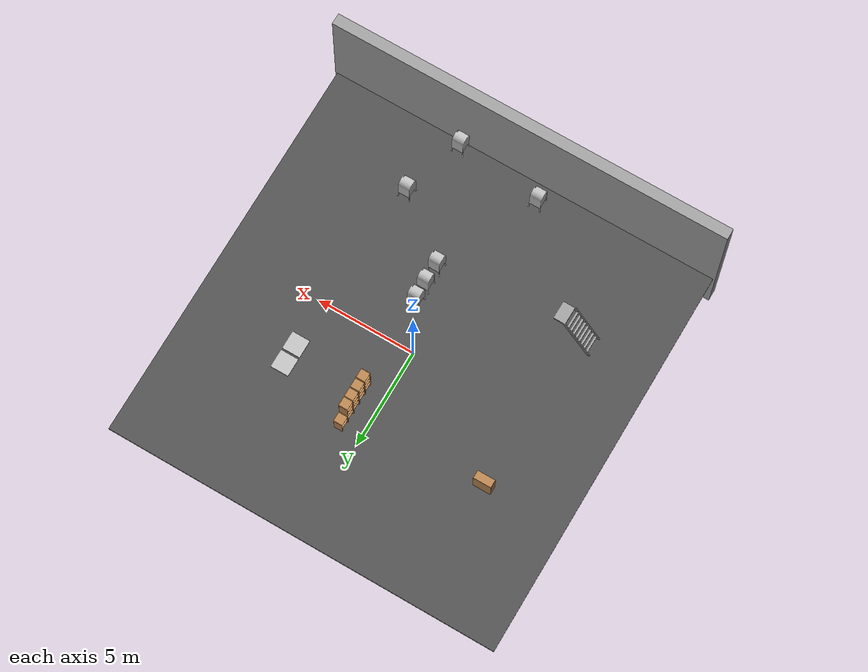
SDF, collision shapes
<sdf version="1.6">
 <model name="indoor_environment_4">
  <link name="link">
   <visual name="visual">
    <cast_shadows>0</cast_shadows>
    <geometry><box><size>20 20 0.1</size></box></geometry>
    <material>
     <script>
      <uri>model://asphalt_plane/materials/scripts</uri>
      <uri>model://asphalt_plane/materials/textures</uri>
      <name>vrc/asphalt</name>
     </script>
     <ambient>0.5 0.5 0.5 1</ambient>
     <diffuse>0.5 0.5 0.5 1</diffuse>
     <specular>0.2 0.2 0.2 1</specular>
     <emissive>0 0 0 1</emissive>
    </material>
   </visual>
   <collision name="collision">
    <geometry><box><size>20 20 0.1</size></box></geometry>
    <surface>
     <friction>
      <ode><mu>1</mu><mu2>1</mu2><fdir1>0 0 0</fdir1><slip1>0</slip1><slip2>0</slip2></ode>
      <torsional>
       <coefficient>1</coefficient>
       <patch_radius>0</patch_radius>
       <surface_radius>0</surface_radius>
       <use_patch_radius>1</use_patch_radius>
       <ode><slip>0</slip></ode>
      </torsional>
     </friction>
     <bounce><restitution_coefficient>0</restitution_coefficient><threshold>1e+06</threshold></bounce>
     <contact>
      <collide_without_contact>0</collide_without_contact>
      <collide_without_contact_bitmask>1</collide_without_contact_bitmask>
      <collide_bitmask>1</collide_bitmask>
      <ode>
       <soft_cfm>0</soft_cfm>
       <soft_erp>0.2</soft_erp>
       <kp>1e+13</kp>
       <kd>1</kd>
       <max_vel>0.01</max_vel>
       <min_depth>0</min_depth>
      </ode>
      <bullet>
       <split_impulse>1</split_impulse>
       <split_impulse_penetration_threshold>-0.01</split_impulse_penetration_threshold>
       <soft_cfm>0</soft_cfm>
       <soft_erp>0.2</soft_erp>
       <kp>1e+13</kp>
       <kd>1</kd>
      </bullet>
     </contact>
    </surface>
   </collision>
  </link>
  <model name="bookshelf_clone_12_clone_4">
   <static>1</static>
   <link name="link">
    <inertial><mass>1</mass></inertial>
    <collision name="back">
     <pose>0 0.005 0.6 0 -0 0</pose>
     <geometry><box><size>0.9 0.01 1.2</size></box></geometry>
    </collision>
    <visual name="visual1">
     <pose>0 0.005 0.6 0 -0 0</pose>
     <geometry><box><size>0.9 0.01 1.2</size></box></geometry>
     <material>
      <script><uri>file://media/materials/scripts/gazebo.material</uri><name>Gazebo/Wood</name></script>
     </material>
    </visual>
    <collision name="left_side">
     <pose>0.45 -0.195 0.6 0 -0 0</pose>
     <geometry><box><size>0.02 0.4 1.2</size></box></geometry>
    </collision>
    <visual name="visual2">
     <pose>0.45 -0.195 0.6 0 -0 0</pose>
     <geometry><box><size>0.02 0.4 1.2</size></box></geometry>
     <material>
      <script><uri>file://media/materials/scripts/gazebo.material</uri><name>Gazebo/Wood</name></script>
     </material>
    </visual>
    <collision name="right_side">
     <pose>-0.45 -0.195 0.6 0 -0 0</pose>
     <geometry><box><size>0.02 0.4 1.2</size></box></geometry>
    </collision>
    <visual name="visual3">
     <pose>-0.45 -0.195 0.6 0 -0 0</pose>
     <geometry><box><size>0.02 0.4 1.2</size></box></geometry>
     <material>
      <script><uri>file://media/materials/scripts/gazebo.material</uri><name>Gazebo/Wood</name></script>
     </material>
    </visual>
    <collision name="bottom">
     <pose>0 -0.195 0.03 0 -0 0</pose>
     <geometry><box><size>0.88 0.4 0.06</size></box></geometry>
    </collision>
    <visual name="visual4">
     <pose>0 -0.195 0.03 0 -0 0</pose>
     <geometry><box><size>0.88 0.4 0.06</size></box></geometry>
     <material>
      <script><uri>file://media/materials/scripts/gazebo.material</uri><name>Gazebo/Wood</name></script>
     </material>
    </visual>
    <collision name="top">
     <pose>0 -0.195 1.19 0 -0 0</pose>
     <geometry><box><size>0.88 0.4 0.02</size></box></geometry>
    </collision>
    <visual name="visual5">
     <pose>0 -0.195 1.19 0 -0 0</pose>
     <geometry><box><size>0.88 0.4 0.02</size></box></geometry>
     <material>
      <script><uri>file://media/materials/scripts/gazebo.material</uri><name>Gazebo/Wood</name></script>
     </material>
    </visual>
    <collision name="low_shelf">
     <pose>0 -0.195 0.43 0 -0 0</pose>
     <geometry><box><size>0.88 0.4 0.02</size></box></geometry>
    </collision>
    <visual name="visual6">
     <pose>0 -0.195 0.43 0 -0 0</pose>
     <geometry><box><size>0.88 0.4 0.02</size></box></geometry>
     <material>
      <script><uri>file://media/materials/scripts/gazebo.material</uri><name>Gazebo/Wood</name></script>
     </material>
    </visual>
    <collision name="high_shelf">
     <pose>0 -0.195 0.8 0 -0 0</pose>
     <geometry><box><size>0.88 0.4 0.02</size></box></geometry>
    </collision>
    <visual name="visual7">
     <pose>0 -0.195 0.8 0 -0 0</pose>
     <geometry><box><size>0.88 0.4 0.02</size></box></geometry>
     <material>
      <script><uri>file://media/materials/scripts/gazebo.material</uri><name>Gazebo/Wood</name></script>
     </material>
    </visual>
   </link>
   <pose>-5.9097 4.04344 0.552309 0 -0 0</pose>
  </model>
  <model name="cabinet_0_clone_3">
   <static>1</static>
   <link name="cabinet_bottom_plate">
    <inertial>
     <pose>0 0 -1 0 -0 0</pose>
     <inertia><ixx>2.05</ixx><ixy>0</ixy><ixz>0</ixz><iyy>2.05</iyy><iyz>0</iyz><izz>2.05</izz></inertia>
     <mass>25</mass>
    </inertial>
    <collision name="cabinet_bottom_plate_geom">
     <pose>0 0 0.01 0 -0 0</pose>
     <geometry><box><size>0.45 0.45 0.02</size></box></geometry>
    </collision>
    <visual name="cabinet_bottom_plate_geom_visual">
     <pose>0 0 0.01 0 -0 0</pose>
     <geometry><box><size>0.45 0.45 0.02</size></box></geometry>
     <material>
      <script><uri>file://media/materials/scripts/gazebo.material</uri><name>Gazebo/Wood</name></script>
     </material>
    </visual>
    <collision name="cabinet_bottom_plate_geom_cabinet_back_plate">
     <pose>0.235 0 0.51 0 -0 0</pose>
     <geometry><box><size>0.02 0.45 1.02</size></box></geometry>
    </collision>
    <visual name="cabinet_bottom_plate_geom_cabinet_back_plate_visual">
     <pose>0.235 0 0.51 0 -0 0</pose>
     <geometry><box><size>0.02 0.45 1.02</size></box></geometry>
     <material>
      <script><uri>file://media/materials/scripts/gazebo.material</uri><name>Gazebo/Wood</name></script>
     </material>
    </visual>
    <collision name="cabinet_bottom_plate_geom_cabinet_left_plate">
     <pose>0 0.235 0.51 0 -0 0</pose>
     <geometry><box><size>0.45 0.02 1.02</size></box></geometry>
    </collision>
    <visual name="cabinet_bottom_plate_geom_cabinet_left_plate_visual">
     <pose>0 0.235 0.51 0 -0 0</pose>
     <geometry><box><size>0.45 0.02 1.02</size></box></geometry>
     <material>
      <script><uri>file://media/materials/scripts/gazebo.material</uri><name>Gazebo/Wood</name></script>
     </material>
    </visual>
    <collision name="cabinet_bottom_plate_geom_cabinet_middle_plate">
     <pose>0 0 0.51 0 -0 0</pose>
     <geometry><box><size>0.45 0.45 0.02</size></box></geometry>
    </collision>
    <visual name="cabinet_bottom_plate_geom_cabinet_middle_plate_visual">
     <pose>0 0 0.51 0 -0 0</pose>
     <geometry><box><size>0.45 0.45 0.02</size></box></geometry>
     <material>
      <script><uri>file://media/materials/scripts/gazebo.material</uri><name>Gazebo/Wood</name></script>
     </material>
    </visual>
    <collision name="cabinet_bottom_plate_geom_cabinet_right_plate">
     <pose>0 -0.235 0.51 0 -0 0</pose>
     <geometry><box><size>0.45 0.02 1.02</size></box></geometry>
    </collision>
    <visual name="cabinet_bottom_plate_geom_cabinet_right_plate_visual">
     <pose>0 -0.235 0.51 0 -0 0</pose>
     <geometry><box><size>0.45 0.02 1.02</size></box></geometry>
     <material>
      <script><uri>file://media/materials/scripts/gazebo.material</uri><name>Gazebo/Wood</name></script>
     </material>
    </visual>
    <collision name="cabinet_bottom_plate_geom_cabinet_top_plate">
     <pose>0 0 1.01 0 -0 0</pose>
     <geometry><box><size>0.45 0.45 0.02</size></box></geometry>
    </collision>
    <visual name="cabinet_bottom_plate_geom_cabinet_top_plate_visual">
     <pose>0 0 1.01 0 -0 0</pose>
     <geometry><box><size>0.45 0.45 0.02</size></box></geometry>
     <material>
      <script><uri>file://media/materials/scripts/gazebo.material</uri><name>Gazebo/Wood</name></script>
     </material>
    </visual>
   </link>
   <pose>1.0903 4.53944 0 0 -0 0</pose>
  </model>
  <model name="cabinet_0_clone_4">
   <static>1</static>
   <link name="cabinet_bottom_plate">
    <inertial>
     <pose>0 0 -1 0 -0 0</pose>
     <inertia><ixx>2.05</ixx><ixy>0</ixy><ixz>0</ixz><iyy>2.05</iyy><iyz>0</iyz><izz>2.05</izz></inertia>
     <mass>25</mass>
    </inertial>
    <collision name="cabinet_bottom_plate_geom">
     <pose>0 0 0.01 0 -0 0</pose>
     <geometry><box><size>0.45 0.45 0.02</size></box></geometry>
    </collision>
    <visual name="cabinet_bottom_plate_geom_visual">
     <pose>0 0 0.01 0 -0 0</pose>
     <geometry><box><size>0.45 0.45 0.02</size></box></geometry>
     <material>
      <script><uri>file://media/materials/scripts/gazebo.material</uri><name>Gazebo/Wood</name></script>
     </material>
    </visual>
    <collision name="cabinet_bottom_plate_geom_cabinet_back_plate">
     <pose>0.235 0 0.51 0 -0 0</pose>
     <geometry><box><size>0.02 0.45 1.02</size></box></geometry>
    </collision>
    <visual name="cabinet_bottom_plate_geom_cabinet_back_plate_visual">
     <pose>0.235 0 0.51 0 -0 0</pose>
     <geometry><box><size>0.02 0.45 1.02</size></box></geometry>
     <material>
      <script><uri>file://media/materials/scripts/gazebo.material</uri><name>Gazebo/Wood</name></script>
     </material>
    </visual>
    <collision name="cabinet_bottom_plate_geom_cabinet_left_plate">
     <pose>0 0.235 0.51 0 -0 0</pose>
     <geometry><box><size>0.45 0.02 1.02</size></box></geometry>
    </collision>
    <visual name="cabinet_bottom_plate_geom_cabinet_left_plate_visual">
     <pose>0 0.235 0.51 0 -0 0</pose>
     <geometry><box><size>0.45 0.02 1.02</size></box></geometry>
     <material>
      <script><uri>file://media/materials/scripts/gazebo.material</uri><name>Gazebo/Wood</name></script>
     </material>
    </visual>
    <collision name="cabinet_bottom_plate_geom_cabinet_middle_plate">
     <pose>0 0 0.51 0 -0 0</pose>
     <geometry><box><size>0.45 0.45 0.02</size></box></geometry>
    </collision>
    <visual name="cabinet_bottom_plate_geom_cabinet_middle_plate_visual">
     <pose>0 0 0.51 0 -0 0</pose>
     <geometry><box><size>0.45 0.45 0.02</size></box></geometry>
     <material>
      <script><uri>file://media/materials/scripts/gazebo.material</uri><name>Gazebo/Wood</name></script>
     </material>
    </visual>
    <collision name="cabinet_bottom_plate_geom_cabinet_right_plate">
     <pose>0 -0.235 0.51 0 -0 0</pose>
     <geometry><box><size>0.45 0.02 1.02</size></box></geometry>
    </collision>
    <visual name="cabinet_bottom_plate_geom_cabinet_right_plate_visual">
     <pose>0 -0.235 0.51 0 -0 0</pose>
     <geometry><box><size>0.45 0.02 1.02</size></box></geometry>
     <material>
      <script><uri>file://media/materials/scripts/gazebo.material</uri><name>Gazebo/Wood</name></script>
     </material>
    </visual>
    <collision name="cabinet_bottom_plate_geom_cabinet_top_plate">
     <pose>0 0 1.01 0 -0 0</pose>
     <geometry><box><size>0.45 0.45 0.02</size></box></geometry>
    </collision>
    <visual name="cabinet_bottom_plate_geom_cabinet_top_plate_visual">
     <pose>0 0 1.01 0 -0 0</pose>
     <geometry><box><size>0.45 0.45 0.02</size></box></geometry>
     <material>
      <script><uri>file://media/materials/scripts/gazebo.material</uri><name>Gazebo/Wood</name></script>
     </material>
    </visual>
   </link>
   <pose>1.0903 4.04344 0 0 -0 0</pose>
  </model>
  <model name="cabinet_0_clone_5">
   <static>1</static>
   <link name="cabinet_bottom_plate">
    <inertial>
     <pose>0 0 -1 0 -0 0</pose>
     <inertia><ixx>2.05</ixx><ixy>0</ixy><ixz>0</ixz><iyy>2.05</iyy><iyz>0</iyz><izz>2.05</izz></inertia>
     <mass>25</mass>
    </inertial>
    <collision name="cabinet_bottom_plate_geom">
     <pose>0 0 0.01 0 -0 0</pose>
     <geometry><box><size>0.45 0.45 0.02</size></box></geometry>
    </collision>
    <visual name="cabinet_bottom_plate_geom_visual">
     <pose>0 0 0.01 0 -0 0</pose>
     <geometry><box><size>0.45 0.45 0.02</size></box></geometry>
     <material>
      <script><uri>file://media/materials/scripts/gazebo.material</uri><name>Gazebo/Wood</name></script>
     </material>
    </visual>
    <collision name="cabinet_bottom_plate_geom_cabinet_back_plate">
     <pose>0.235 0 0.51 0 -0 0</pose>
     <geometry><box><size>0.02 0.45 1.02</size></box></geometry>
    </collision>
    <visual name="cabinet_bottom_plate_geom_cabinet_back_plate_visual">
     <pose>0.235 0 0.51 0 -0 0</pose>
     <geometry><box><size>0.02 0.45 1.02</size></box></geometry>
     <material>
      <script><uri>file://media/materials/scripts/gazebo.material</uri><name>Gazebo/Wood</name></script>
     </material>
    </visual>
    <collision name="cabinet_bottom_plate_geom_cabinet_left_plate">
     <pose>0 0.235 0.51 0 -0 0</pose>
     <geometry><box><size>0.45 0.02 1.02</size></box></geometry>
    </collision>
    <visual name="cabinet_bottom_plate_geom_cabinet_left_plate_visual">
     <pose>0 0.235 0.51 0 -0 0</pose>
     <geometry><box><size>0.45 0.02 1.02</size></box></geometry>
     <material>
      <script><uri>file://media/materials/scripts/gazebo.material</uri><name>Gazebo/Wood</name></script>
     </material>
    </visual>
    <collision name="cabinet_bottom_plate_geom_cabinet_middle_plate">
     <pose>0 0 0.51 0 -0 0</pose>
     <geometry><box><size>0.45 0.45 0.02</size></box></geometry>
    </collision>
    <visual name="cabinet_bottom_plate_geom_cabinet_middle_plate_visual">
     <pose>0 0 0.51 0 -0 0</pose>
     <geometry><box><size>0.45 0.45 0.02</size></box></geometry>
     <material>
      <script><uri>file://media/materials/scripts/gazebo.material</uri><name>Gazebo/Wood</name></script>
     </material>
    </visual>
    <collision name="cabinet_bottom_plate_geom_cabinet_right_plate">
     <pose>0 -0.235 0.51 0 -0 0</pose>
     <geometry><box><size>0.45 0.02 1.02</size></box></geometry>
    </collision>
    <visual name="cabinet_bottom_plate_geom_cabinet_right_plate_visual">
     <pose>0 -0.235 0.51 0 -0 0</pose>
     <geometry><box><size>0.45 0.02 1.02</size></box></geometry>
     <material>
      <script><uri>file://media/materials/scripts/gazebo.material</uri><name>Gazebo/Wood</name></script>
     </material>
    </visual>
    <collision name="cabinet_bottom_plate_geom_cabinet_top_plate">
     <pose>0 0 1.01 0 -0 0</pose>
     <geometry><box><size>0.45 0.45 0.02</size></box></geometry>
    </collision>
    <visual name="cabinet_bottom_plate_geom_cabinet_top_plate_visual">
     <pose>0 0 1.01 0 -0 0</pose>
     <geometry><box><size>0.45 0.45 0.02</size></box></geometry>
     <material>
      <script><uri>file://media/materials/scripts/gazebo.material</uri><name>Gazebo/Wood</name></script>
     </material>
    </visual>
   </link>
   <pose>1.0903 3.54505 0 0 -0 0</pose>
  </model>
  <model name="cabinet_0_clone_6">
   <static>1</static>
   <link name="cabinet_bottom_plate">
    <inertial>
     <pose>0 0 -1 0 -0 0</pose>
     <inertia><ixx>2.05</ixx><ixy>0</ixy><ixz>0</ixz><iyy>2.05</iyy><iyz>0</iyz><izz>2.05</izz></inertia>
     <mass>25</mass>
    </inertial>
    <collision name="cabinet_bottom_plate_geom">
     <pose>0 0 0.01 0 -0 0</pose>
     <geometry><box><size>0.45 0.45 0.02</size></box></geometry>
    </collision>
    <visual name="cabinet_bottom_plate_geom_visual">
     <pose>0 0 0.01 0 -0 0</pose>
     <geometry><box><size>0.45 0.45 0.02</size></box></geometry>
     <material>
      <script><uri>file://media/materials/scripts/gazebo.material</uri><name>Gazebo/Wood</name></script>
     </material>
    </visual>
    <collision name="cabinet_bottom_plate_geom_cabinet_back_plate">
     <pose>0.235 0 0.51 0 -0 0</pose>
     <geometry><box><size>0.02 0.45 1.02</size></box></geometry>
    </collision>
    <visual name="cabinet_bottom_plate_geom_cabinet_back_plate_visual">
     <pose>0.235 0 0.51 0 -0 0</pose>
     <geometry><box><size>0.02 0.45 1.02</size></box></geometry>
     <material>
      <script><uri>file://media/materials/scripts/gazebo.material</uri><name>Gazebo/Wood</name></script>
     </material>
    </visual>
    <collision name="cabinet_bottom_plate_geom_cabinet_left_plate">
     <pose>0 0.235 0.51 0 -0 0</pose>
     <geometry><box><size>0.45 0.02 1.02</size></box></geometry>
    </collision>
    <visual name="cabinet_bottom_plate_geom_cabinet_left_plate_visual">
     <pose>0 0.235 0.51 0 -0 0</pose>
     <geometry><box><size>0.45 0.02 1.02</size></box></geometry>
     <material>
      <script><uri>file://media/materials/scripts/gazebo.material</uri><name>Gazebo/Wood</name></script>
     </material>
    </visual>
    <collision name="cabinet_bottom_plate_geom_cabinet_middle_plate">
     <pose>0 0 0.51 0 -0 0</pose>
     <geometry><box><size>0.45 0.45 0.02</size></box></geometry>
    </collision>
    <visual name="cabinet_bottom_plate_geom_cabinet_middle_plate_visual">
     <pose>0 0 0.51 0 -0 0</pose>
     <geometry><box><size>0.45 0.45 0.02</size></box></geometry>
     <material>
      <script><uri>file://media/materials/scripts/gazebo.material</uri><name>Gazebo/Wood</name></script>
     </material>
    </visual>
    <collision name="cabinet_bottom_plate_geom_cabinet_right_plate">
     <pose>0 -0.235 0.51 0 -0 0</pose>
     <geometry><box><size>0.45 0.02 1.02</size></box></geometry>
    </collision>
    <visual name="cabinet_bottom_plate_geom_cabinet_right_plate_visual">
     <pose>0 -0.235 0.51 0 -0 0</pose>
     <geometry><box><size>0.45 0.02 1.02</size></box></geometry>
     <material>
      <script><uri>file://media/materials/scripts/gazebo.material</uri><name>Gazebo/Wood</name></script>
     </material>
    </visual>
    <collision name="cabinet_bottom_plate_geom_cabinet_top_plate">
     <pose>0 0 1.01 0 -0 0</pose>
     <geometry><box><size>0.45 0.45 0.02</size></box></geometry>
    </collision>
    <visual name="cabinet_bottom_plate_geom_cabinet_top_plate_visual">
     <pose>0 0 1.01 0 -0 0</pose>
     <geometry><box><size>0.45 0.45 0.02</size></box></geometry>
     <material>
      <script><uri>file://media/materials/scripts/gazebo.material</uri><name>Gazebo/Wood</name></script>
     </material>
    </visual>
   </link>
   <pose>1.0903 3.04344 0 0 -0 0</pose>
  </model>
  <model name="cabinet_0_clone_7">
   <static>1</static>
   <link name="cabinet_bottom_plate">
    <inertial>
     <pose>0 0 -1 0 -0 0</pose>
     <inertia><ixx>2.05</ixx><ixy>0</ixy><ixz>0</ixz><iyy>2.05</iyy><iyz>0</iyz><izz>2.05</izz></inertia>
     <mass>25</mass>
    </inertial>
    <collision name="cabinet_bottom_plate_geom">
     <pose>0 0 0.01 0 -0 0</pose>
     <geometry><box><size>0.45 0.45 0.02</size></box></geometry>
    </collision>
    <visual name="cabinet_bottom_plate_geom_visual">
     <pose>0 0 0.01 0 -0 0</pose>
     <geometry><box><size>0.45 0.45 0.02</size></box></geometry>
     <material>
      <script><uri>file://media/materials/scripts/gazebo.material</uri><name>Gazebo/Wood</name></script>
     </material>
    </visual>
    <collision name="cabinet_bottom_plate_geom_cabinet_back_plate">
     <pose>0.235 0 0.51 0 -0 0</pose>
     <geometry><box><size>0.02 0.45 1.02</size></box></geometry>
    </collision>
    <visual name="cabinet_bottom_plate_geom_cabinet_back_plate_visual">
     <pose>0.235 0 0.51 0 -0 0</pose>
     <geometry><box><size>0.02 0.45 1.02</size></box></geometry>
     <material>
      <script><uri>file://media/materials/scripts/gazebo.material</uri><name>Gazebo/Wood</name></script>
     </material>
    </visual>
    <collision name="cabinet_bottom_plate_geom_cabinet_left_plate">
     <pose>0 0.235 0.51 0 -0 0</pose>
     <geometry><box><size>0.45 0.02 1.02</size></box></geometry>
    </collision>
    <visual name="cabinet_bottom_plate_geom_cabinet_left_plate_visual">
     <pose>0 0.235 0.51 0 -0 0</pose>
     <geometry><box><size>0.45 0.02 1.02</size></box></geometry>
     <material>
      <script><uri>file://media/materials/scripts/gazebo.material</uri><name>Gazebo/Wood</name></script>
     </material>
    </visual>
    <collision name="cabinet_bottom_plate_geom_cabinet_middle_plate">
     <pose>0 0 0.51 0 -0 0</pose>
     <geometry><box><size>0.45 0.45 0.02</size></box></geometry>
    </collision>
    <visual name="cabinet_bottom_plate_geom_cabinet_middle_plate_visual">
     <pose>0 0 0.51 0 -0 0</pose>
     <geometry><box><size>0.45 0.45 0.02</size></box></geometry>
     <material>
      <script><uri>file://media/materials/scripts/gazebo.material</uri><name>Gazebo/Wood</name></script>
     </material>
    </visual>
    <collision name="cabinet_bottom_plate_geom_cabinet_right_plate">
     <pose>0 -0.235 0.51 0 -0 0</pose>
     <geometry><box><size>0.45 0.02 1.02</size></box></geometry>
    </collision>
    <visual name="cabinet_bottom_plate_geom_cabinet_right_plate_visual">
     <pose>0 -0.235 0.51 0 -0 0</pose>
     <geometry><box><size>0.45 0.02 1.02</size></box></geometry>
     <material>
      <script><uri>file://media/materials/scripts/gazebo.material</uri><name>Gazebo/Wood</name></script>
     </material>
    </visual>
    <collision name="cabinet_bottom_plate_geom_cabinet_top_plate">
     <pose>0 0 1.01 0 -0 0</pose>
     <geometry><box><size>0.45 0.45 0.02</size></box></geometry>
    </collision>
    <visual name="cabinet_bottom_plate_geom_cabinet_top_plate_visual">
     <pose>0 0 1.01 0 -0 0</pose>
     <geometry><box><size>0.45 0.45 0.02</size></box></geometry>
     <material>
      <script><uri>file://media/materials/scripts/gazebo.material</uri><name>Gazebo/Wood</name></script>
     </material>
    </visual>
   </link>
   <pose>1.0903 2.52791 0 0 -0 0</pose>
  </model>
  <model name="cabinet_clone_0_clone_2">
   <static>1</static>
   <link name="cabinet_bottom_plate">
    <inertial>
     <pose>0 0 -1 0 -0 0</pose>
     <inertia><ixx>2.05</ixx><ixy>0</ixy><ixz>0</ixz><iyy>2.05</iyy><iyz>0</iyz><izz>2.05</izz></inertia>
     <mass>25</mass>
    </inertial>
    <collision name="cabinet_bottom_plate_geom">
     <pose>0 0 0.01 0 -0 0</pose>
     <geometry><box><size>0.45 0.45 0.02</size></box></geometry>
    </collision>
    <visual name="cabinet_bottom_plate_geom_visual">
     <pose>0 0 0.01 0 -0 0</pose>
     <geometry><box><size>0.45 0.45 0.02</size></box></geometry>
     <material>
      <script><uri>file://media/materials/scripts/gazebo.material</uri><name>Gazebo/Wood</name></script>
     </material>
    </visual>
    <collision name="cabinet_bottom_plate_geom_cabinet_back_plate">
     <pose>0.235 0 0.51 0 -0 0</pose>
     <geometry><box><size>0.02 0.45 1.02</size></box></geometry>
    </collision>
    <visual name="cabinet_bottom_plate_geom_cabinet_back_plate_visual">
     <pose>0.235 0 0.51 0 -0 0</pose>
     <geometry><box><size>0.02 0.45 1.02</size></box></geometry>
     <material>
      <script><uri>file://media/materials/scripts/gazebo.material</uri><name>Gazebo/Wood</name></script>
     </material>
    </visual>
    <collision name="cabinet_bottom_plate_geom_cabinet_left_plate">
     <pose>0 0.235 0.51 0 -0 0</pose>
     <geometry><box><size>0.45 0.02 1.02</size></box></geometry>
    </collision>
    <visual name="cabinet_bottom_plate_geom_cabinet_left_plate_visual">
     <pose>0 0.235 0.51 0 -0 0</pose>
     <geometry><box><size>0.45 0.02 1.02</size></box></geometry>
     <material>
      <script><uri>file://media/materials/scripts/gazebo.material</uri><name>Gazebo/Wood</name></script>
     </material>
    </visual>
    <collision name="cabinet_bottom_plate_geom_cabinet_middle_plate">
     <pose>0 0 0.51 0 -0 0</pose>
     <geometry><box><size>0.45 0.45 0.02</size></box></geometry>
    </collision>
    <visual name="cabinet_bottom_plate_geom_cabinet_middle_plate_visual">
     <pose>0 0 0.51 0 -0 0</pose>
     <geometry><box><size>0.45 0.45 0.02</size></box></geometry>
     <material>
      <script><uri>file://media/materials/scripts/gazebo.material</uri><name>Gazebo/Wood</name></script>
     </material>
    </visual>
    <collision name="cabinet_bottom_plate_geom_cabinet_right_plate">
     <pose>0 -0.235 0.51 0 -0 0</pose>
     <geometry><box><size>0.45 0.02 1.02</size></box></geometry>
    </collision>
    <visual name="cabinet_bottom_plate_geom_cabinet_right_plate_visual">
     <pose>0 -0.235 0.51 0 -0 0</pose>
     <geometry><box><size>0.45 0.02 1.02</size></box></geometry>
     <material>
      <script><uri>file://media/materials/scripts/gazebo.material</uri><name>Gazebo/Wood</name></script>
     </material>
    </visual>
    <collision name="cabinet_bottom_plate_geom_cabinet_top_plate">
     <pose>0 0 1.01 0 -0 0</pose>
     <geometry><box><size>0.45 0.45 0.02</size></box></geometry>
    </collision>
    <visual name="cabinet_bottom_plate_geom_cabinet_top_plate_visual">
     <pose>0 0 1.01 0 -0 0</pose>
     <geometry><box><size>0.45 0.45 0.02</size></box></geometry>
     <material>
      <script><uri>file://media/materials/scripts/gazebo.material</uri><name>Gazebo/Wood</name></script>
     </material>
    </visual>
   </link>
   <pose>1.0903 4.04344 1.01792 0 -0 0</pose>
  </model>
  <model name="cabinet_clone_0_clone_3">
   <static>1</static>
   <link name="cabinet_bottom_plate">
    <inertial>
     <pose>0 0 -1 0 -0 0</pose>
     <inertia><ixx>2.05</ixx><ixy>0</ixy><ixz>0</ixz><iyy>2.05</iyy><iyz>0</iyz><izz>2.05</izz></inertia>
     <mass>25</mass>
    </inertial>
    <collision name="cabinet_bottom_plate_geom">
     <pose>0 0 0.01 0 -0 0</pose>
     <geometry><box><size>0.45 0.45 0.02</size></box></geometry>
    </collision>
    <visual name="cabinet_bottom_plate_geom_visual">
     <pose>0 0 0.01 0 -0 0</pose>
     <geometry><box><size>0.45 0.45 0.02</size></box></geometry>
     <material>
      <script><uri>file://media/materials/scripts/gazebo.material</uri><name>Gazebo/Wood</name></script>
     </material>
    </visual>
    <collision name="cabinet_bottom_plate_geom_cabinet_back_plate">
     <pose>0.235 0 0.51 0 -0 0</pose>
     <geometry><box><size>0.02 0.45 1.02</size></box></geometry>
    </collision>
    <visual name="cabinet_bottom_plate_geom_cabinet_back_plate_visual">
     <pose>0.235 0 0.51 0 -0 0</pose>
     <geometry><box><size>0.02 0.45 1.02</size></box></geometry>
     <material>
      <script><uri>file://media/materials/scripts/gazebo.material</uri><name>Gazebo/Wood</name></script>
     </material>
    </visual>
    <collision name="cabinet_bottom_plate_geom_cabinet_left_plate">
     <pose>0 0.235 0.51 0 -0 0</pose>
     <geometry><box><size>0.45 0.02 1.02</size></box></geometry>
    </collision>
    <visual name="cabinet_bottom_plate_geom_cabinet_left_plate_visual">
     <pose>0 0.235 0.51 0 -0 0</pose>
     <geometry><box><size>0.45 0.02 1.02</size></box></geometry>
     <material>
      <script><uri>file://media/materials/scripts/gazebo.material</uri><name>Gazebo/Wood</name></script>
     </material>
    </visual>
    <collision name="cabinet_bottom_plate_geom_cabinet_middle_plate">
     <pose>0 0 0.51 0 -0 0</pose>
     <geometry><box><size>0.45 0.45 0.02</size></box></geometry>
    </collision>
    <visual name="cabinet_bottom_plate_geom_cabinet_middle_plate_visual">
     <pose>0 0 0.51 0 -0 0</pose>
     <geometry><box><size>0.45 0.45 0.02</size></box></geometry>
     <material>
      <script><uri>file://media/materials/scripts/gazebo.material</uri><name>Gazebo/Wood</name></script>
     </material>
    </visual>
    <collision name="cabinet_bottom_plate_geom_cabinet_right_plate">
     <pose>0 -0.235 0.51 0 -0 0</pose>
     <geometry><box><size>0.45 0.02 1.02</size></box></geometry>
    </collision>
    <visual name="cabinet_bottom_plate_geom_cabinet_right_plate_visual">
     <pose>0 -0.235 0.51 0 -0 0</pose>
     <geometry><box><size>0.45 0.02 1.02</size></box></geometry>
     <material>
      <script><uri>file://media/materials/scripts/gazebo.material</uri><name>Gazebo/Wood</name></script>
     </material>
    </visual>
    <collision name="cabinet_bottom_plate_geom_cabinet_top_plate">
     <pose>0 0 1.01 0 -0 0</pose>
     <geometry><box><size>0.45 0.45 0.02</size></box></geometry>
    </collision>
    <visual name="cabinet_bottom_plate_geom_cabinet_top_plate_visual">
     <pose>0 0 1.01 0 -0 0</pose>
     <geometry><box><size>0.45 0.45 0.02</size></box></geometry>
     <material>
      <script><uri>file://media/materials/scripts/gazebo.material</uri><name>Gazebo/Wood</name></script>
     </material>
    </visual>
   </link>
   <pose>1.0903 3.54828 1.01792 0 -0 0</pose>
  </model>
  <model name="cabinet_clone_0_clone_4">
   <static>1</static>
   <link name="cabinet_bottom_plate">
    <inertial>
     <pose>0 0 -1 0 -0 0</pose>
     <inertia><ixx>2.05</ixx><ixy>0</ixy><ixz>0</ixz><iyy>2.05</iyy><iyz>0</iyz><izz>2.05</izz></inertia>
     <mass>25</mass>
    </inertial>
    <collision name="cabinet_bottom_plate_geom">
     <pose>0 0 0.01 0 -0 0</pose>
     <geometry><box><size>0.45 0.45 0.02</size></box></geometry>
    </collision>
    <visual name="cabinet_bottom_plate_geom_visual">
     <pose>0 0 0.01 0 -0 0</pose>
     <geometry><box><size>0.45 0.45 0.02</size></box></geometry>
     <material>
      <script><uri>file://media/materials/scripts/gazebo.material</uri><name>Gazebo/Wood</name></script>
     </material>
    </visual>
    <collision name="cabinet_bottom_plate_geom_cabinet_back_plate">
     <pose>0.235 0 0.51 0 -0 0</pose>
     <geometry><box><size>0.02 0.45 1.02</size></box></geometry>
    </collision>
    <visual name="cabinet_bottom_plate_geom_cabinet_back_plate_visual">
     <pose>0.235 0 0.51 0 -0 0</pose>
     <geometry><box><size>0.02 0.45 1.02</size></box></geometry>
     <material>
      <script><uri>file://media/materials/scripts/gazebo.material</uri><name>Gazebo/Wood</name></script>
     </material>
    </visual>
    <collision name="cabinet_bottom_plate_geom_cabinet_left_plate">
     <pose>0 0.235 0.51 0 -0 0</pose>
     <geometry><box><size>0.45 0.02 1.02</size></box></geometry>
    </collision>
    <visual name="cabinet_bottom_plate_geom_cabinet_left_plate_visual">
     <pose>0 0.235 0.51 0 -0 0</pose>
     <geometry><box><size>0.45 0.02 1.02</size></box></geometry>
     <material>
      <script><uri>file://media/materials/scripts/gazebo.material</uri><name>Gazebo/Wood</name></script>
     </material>
    </visual>
    <collision name="cabinet_bottom_plate_geom_cabinet_middle_plate">
     <pose>0 0 0.51 0 -0 0</pose>
     <geometry><box><size>0.45 0.45 0.02</size></box></geometry>
    </collision>
    <visual name="cabinet_bottom_plate_geom_cabinet_middle_plate_visual">
     <pose>0 0 0.51 0 -0 0</pose>
     <geometry><box><size>0.45 0.45 0.02</size></box></geometry>
     <material>
      <script><uri>file://media/materials/scripts/gazebo.material</uri><name>Gazebo/Wood</name></script>
     </material>
    </visual>
    <collision name="cabinet_bottom_plate_geom_cabinet_right_plate">
     <pose>0 -0.235 0.51 0 -0 0</pose>
     <geometry><box><size>0.45 0.02 1.02</size></box></geometry>
    </collision>
    <visual name="cabinet_bottom_plate_geom_cabinet_right_plate_visual">
     <pose>0 -0.235 0.51 0 -0 0</pose>
     <geometry><box><size>0.45 0.02 1.02</size></box></geometry>
     <material>
      <script><uri>file://media/materials/scripts/gazebo.material</uri><name>Gazebo/Wood</name></script>
     </material>
    </visual>
    <collision name="cabinet_bottom_plate_geom_cabinet_top_plate">
     <pose>0 0 1.01 0 -0 0</pose>
     <geometry><box><size>0.45 0.45 0.02</size></box></geometry>
    </collision>
    <visual name="cabinet_bottom_plate_geom_cabinet_top_plate_visual">
     <pose>0 0 1.01 0 -0 0</pose>
     <geometry><box><size>0.45 0.45 0.02</size></box></geometry>
     <material>
      <script><uri>file://media/materials/scripts/gazebo.material</uri><name>Gazebo/Wood</name></script>
     </material>
    </visual>
   </link>
   <pose>1.0903 3.04344 1.01792 0 -0 0</pose>
  </model>
  <model name="cabinet_clone_0_clone_5">
   <static>1</static>
   <link name="cabinet_bottom_plate">
    <inertial>
     <pose>0 0 -1 0 -0 0</pose>
     <inertia><ixx>2.05</ixx><ixy>0</ixy><ixz>0</ixz><iyy>2.05</iyy><iyz>0</iyz><izz>2.05</izz></inertia>
     <mass>25</mass>
    </inertial>
    <collision name="cabinet_bottom_plate_geom">
     <pose>0 0 0.01 0 -0 0</pose>
     <geometry><box><size>0.45 0.45 0.02</size></box></geometry>
    </collision>
    <visual name="cabinet_bottom_plate_geom_visual">
     <pose>0 0 0.01 0 -0 0</pose>
     <geometry><box><size>0.45 0.45 0.02</size></box></geometry>
     <material>
      <script><uri>file://media/materials/scripts/gazebo.material</uri><name>Gazebo/Wood</name></script>
     </material>
    </visual>
    <collision name="cabinet_bottom_plate_geom_cabinet_back_plate">
     <pose>0.235 0 0.51 0 -0 0</pose>
     <geometry><box><size>0.02 0.45 1.02</size></box></geometry>
    </collision>
    <visual name="cabinet_bottom_plate_geom_cabinet_back_plate_visual">
     <pose>0.235 0 0.51 0 -0 0</pose>
     <geometry><box><size>0.02 0.45 1.02</size></box></geometry>
     <material>
      <script><uri>file://media/materials/scripts/gazebo.material</uri><name>Gazebo/Wood</name></script>
     </material>
    </visual>
    <collision name="cabinet_bottom_plate_geom_cabinet_left_plate">
     <pose>0 0.235 0.51 0 -0 0</pose>
     <geometry><box><size>0.45 0.02 1.02</size></box></geometry>
    </collision>
    <visual name="cabinet_bottom_plate_geom_cabinet_left_plate_visual">
     <pose>0 0.235 0.51 0 -0 0</pose>
     <geometry><box><size>0.45 0.02 1.02</size></box></geometry>
     <material>
      <script><uri>file://media/materials/scripts/gazebo.material</uri><name>Gazebo/Wood</name></script>
     </material>
    </visual>
    <collision name="cabinet_bottom_plate_geom_cabinet_middle_plate">
     <pose>0 0 0.51 0 -0 0</pose>
     <geometry><box><size>0.45 0.45 0.02</size></box></geometry>
    </collision>
    <visual name="cabinet_bottom_plate_geom_cabinet_middle_plate_visual">
     <pose>0 0 0.51 0 -0 0</pose>
     <geometry><box><size>0.45 0.45 0.02</size></box></geometry>
     <material>
      <script><uri>file://media/materials/scripts/gazebo.material</uri><name>Gazebo/Wood</name></script>
     </material>
    </visual>
    <collision name="cabinet_bottom_plate_geom_cabinet_right_plate">
     <pose>0 -0.235 0.51 0 -0 0</pose>
     <geometry><box><size>0.45 0.02 1.02</size></box></geometry>
    </collision>
    <visual name="cabinet_bottom_plate_geom_cabinet_right_plate_visual">
     <pose>0 -0.235 0.51 0 -0 0</pose>
     <geometry><box><size>0.45 0.02 1.02</size></box></geometry>
     <material>
      <script><uri>file://media/materials/scripts/gazebo.material</uri><name>Gazebo/Wood</name></script>
     </material>
    </visual>
    <collision name="cabinet_bottom_plate_geom_cabinet_top_plate">
     <pose>0 0 1.01 0 -0 0</pose>
     <geometry><box><size>0.45 0.45 0.02</size></box></geometry>
    </collision>
    <visual name="cabinet_bottom_plate_geom_cabinet_top_plate_visual">
     <pose>0 0 1.01 0 -0 0</pose>
     <geometry><box><size>0.45 0.45 0.02</size></box></geometry>
     <material>
      <script><uri>file://media/materials/scripts/gazebo.material</uri><name>Gazebo/Wood</name></script>
     </material>
    </visual>
   </link>
   <pose>1.0903 2.5351 1.01792 0 -0 0</pose>
  </model>
  <model name="cafe_table_clone_1_clone_2">
   <static>1</static>
   <link name="link">
    <collision name="surface">
     <pose>0 0 0.755 0 -0 0</pose>
     <geometry><box><size>0.913 0.913 0.04</size></box></geometry>
    </collision>
    <collision name="column">
     <pose>0 0 0.37 0 -0 0</pose>
     <geometry><box><size>0.042 0.042 0.74</size></box></geometry>
    </collision>
    <collision name="base">
     <pose>0 0 0.02 0 -0 0</pose>
     <geometry><box><size>0.56 0.56 0.04</size></box></geometry>
    </collision>
    <visual name="visual">
     <geometry><mesh><uri>model://cafe_table/meshes/cafe_table.dae</uri></mesh></geometry>
    </visual>
   </link>
   <pose>4.56074 3.62804 0.457011 0 -0 0</pose>
  </model>
  <model name="cafe_table_clone_1_clone_3">
   <static>1</static>
   <link name="link">
    <collision name="surface">
     <pose>0 0 0.755 0 -0 0</pose>
     <geometry><box><size>0.913 0.913 0.04</size></box></geometry>
    </collision>
    <collision name="column">
     <pose>0 0 0.37 0 -0 0</pose>
     <geometry><box><size>0.042 0.042 0.74</size></box></geometry>
    </collision>
    <collision name="base">
     <pose>0 0 0.02 0 -0 0</pose>
     <geometry><box><size>0.56 0.56 0.04</size></box></geometry>
    </collision>
    <visual name="visual">
     <geometry><mesh><uri>model://cafe_table/meshes/cafe_table.dae</uri></mesh></geometry>
    </visual>
   </link>
   <pose>4.55859 2.62776 0.457011 0 -0 0</pose>
  </model>
  <model name="grey_wall_mw_clone_clone_0">
   <link name="link">
    <pose>-8.81665 -2.69351 1.4 0 -0 0</pose>
    <inertial>
     <inertia><ixx>nan</ixx><ixy>0</ixy><ixz>0</ixz><iyy>nan</iyy><iyz>0</iyz><izz>nan</izz></inertia>
     <mass>0</mass>
    </inertial>
    <visual name="visual">
     <cast_shadows>0</cast_shadows>
     <geometry><box><size>20.2056 0.556506 8.63552</size></box></geometry>
     <material>
      <script>
       <uri>model://grey_wall/materials/scripts</uri>
       <uri>model://grey_wall/materials/textures</uri>
       <name>vrc/grey_wall</name>
      </script>
      <ambient>1 1 1 1</ambient>
      <diffuse>1 1 1 1</diffuse>
      <specular>0 0 0 1</specular>
      <emissive>0 0 0 1</emissive>
     </material>
    </visual>
    <collision name="collision">
     <geometry><box><size>20.2056 0.556506 8.63552</size></box></geometry>
     <surface>
      <friction>
       <ode><mu>1</mu><mu2>1</mu2><fdir1>0 0 0</fdir1><slip1>0</slip1><slip2>0</slip2></ode>
       <torsional>
        <coefficient>1</coefficient>
        <patch_radius>0</patch_radius>
        <surface_radius>0</surface_radius>
        <use_patch_radius>1</use_patch_radius>
        <ode><slip>0</slip></ode>
       </torsional>
      </friction>
      <bounce><restitution_coefficient>0</restitution_coefficient><threshold>1e+06</threshold></bounce>
      <contact>
       <collide_without_contact>0</collide_without_contact>
       <collide_without_contact_bitmask>1</collide_without_contact_bitmask>
       <collide_bitmask>1</collide_bitmask>
       <ode>
        <soft_cfm>0</soft_cfm>
        <soft_erp>0.2</soft_erp>
        <kp>1e+13</kp>
        <kd>1</kd>
        <max_vel>0.01</max_vel>
        <min_depth>0</min_depth>
       </ode>
       <bullet>
        <split_impulse>1</split_impulse>
        <split_impulse_penetration_threshold>-0.01</split_impulse_penetration_threshold>
        <soft_cfm>0</soft_cfm>
        <soft_erp>0.2</soft_erp>
        <kp>1e+13</kp>
        <kd>1</kd>
       </bullet>
      </contact>
     </surface>
    </collision>
   </link>
   <static>1</static>
   <pose>8.82001 -7.57123 0 0 -0 0</pose>
  </model>
  <model name="ladder_60deg_0rails_clone_1_clone_0">
   <static>1</static>
   <link name="step0">
    <pose>0 0.15396 0.266667 0 -0 0</pose>
    <inertial>
     <mass>9.75482</mass>
     <inertia>
      <ixx>0.00957124</ixx>
      <iyy>0.65963</iyy>
      <izz>0.666842</izz>
      <ixy>0</ixy>
      <ixz>0</ixz>
      <iyz>0</iyz>
     </inertia>
    </inertial>
    <collision name="collision"><geometry><box><size>0.9 0.1016 0.0381</size></box></geometry></collision>
    <visual name="visual">
     <geometry><box><size>0.9 0.1016 0.0381</size></box></geometry>
     <material>
      <script><uri>file://media/materials/scripts/gazebo.material</uri><name>Gazebo/Grey</name></script>
     </material>
    </visual>
   </link>
   <link name="step1">
    <pose>0 0.30792 0.533333 0 -0 0</pose>
    <inertial>
     <mass>9.75482</mass>
     <inertia>
      <ixx>0.00957124</ixx>
      <iyy>0.65963</iyy>
      <izz>0.666842</izz>
      <ixy>0</ixy>
      <ixz>0</ixz>
      <iyz>0</iyz>
     </inertia>
    </inertial>
    <collision name="collision"><geometry><box><size>0.9 0.1016 0.0381</size></box></geometry></collision>
    <visual name="visual">
     <geometry><box><size>0.9 0.1016 0.0381</size></box></geometry>
     <material>
      <script><uri>file://media/materials/scripts/gazebo.material</uri><name>Gazebo/Grey</name></script>
     </material>
    </visual>
   </link>
   <link name="step2">
    <pose>0 0.46188 0.8 0 -0 0</pose>
    <inertial>
     <mass>9.75482</mass>
     <inertia>
      <ixx>0.00957124</ixx>
      <iyy>0.65963</iyy>
      <izz>0.666842</izz>
      <ixy>0</ixy>
      <ixz>0</ixz>
      <iyz>0</iyz>
     </inertia>
    </inertial>
    <collision name="collision"><geometry><box><size>0.9 0.1016 0.0381</size></box></geometry></collision>
    <visual name="visual">
     <geometry><box><size>0.9 0.1016 0.0381</size></box></geometry>
     <material>
      <script><uri>file://media/materials/scripts/gazebo.material</uri><name>Gazebo/Grey</name></script>
     </material>
    </visual>
   </link>
   <link name="step3">
    <pose>0 0.61584 1.06667 0 -0 0</pose>
    <inertial>
     <mass>9.75482</mass>
     <inertia>
      <ixx>0.00957124</ixx>
      <iyy>0.65963</iyy>
      <izz>0.666842</izz>
      <ixy>0</ixy>
      <ixz>0</ixz>
      <iyz>0</iyz>
     </inertia>
    </inertial>
    <collision name="collision"><geometry><box><size>0.9 0.1016 0.0381</size></box></geometry></collision>
    <visual name="visual">
     <geometry><box><size>0.9 0.1016 0.0381</size></box></geometry>
     <material>
      <script><uri>file://media/materials/scripts/gazebo.material</uri><name>Gazebo/Grey</name></script>
     </material>
    </visual>
   </link>
   <link name="step4">
    <pose>0 0.7698 1.33333 0 -0 0</pose>
    <inertial>
     <mass>9.75482</mass>
     <inertia>
      <ixx>0.00957124</ixx>
      <iyy>0.65963</iyy>
      <izz>0.666842</izz>
      <ixy>0</ixy>
      <ixz>0</ixz>
      <iyz>0</iyz>
     </inertia>
    </inertial>
    <collision name="collision"><geometry><box><size>0.9 0.1016 0.0381</size></box></geometry></collision>
    <visual name="visual">
     <geometry><box><size>0.9 0.1016 0.0381</size></box></geometry>
     <material>
      <script><uri>file://media/materials/scripts/gazebo.material</uri><name>Gazebo/Grey</name></script>
     </material>
    </visual>
   </link>
   <link name="step5">
    <pose>0 0.92376 1.6 0 -0 0</pose>
    <inertial>
     <mass>9.75482</mass>
     <inertia>
      <ixx>0.00957124</ixx>
      <iyy>0.65963</iyy>
      <izz>0.666842</izz>
      <ixy>0</ixy>
      <ixz>0</ixz>
      <iyz>0</iyz>
     </inertia>
    </inertial>
    <collision name="collision"><geometry><box><size>0.9 0.1016 0.0381</size></box></geometry></collision>
    <visual name="visual">
     <geometry><box><size>0.9 0.1016 0.0381</size></box></geometry>
     <material>
      <script><uri>file://media/materials/scripts/gazebo.material</uri><name>Gazebo/Grey</name></script>
     </material>
    </visual>
   </link>
   <link name="step6">
    <pose>0 1.07772 1.86667 0 -0 0</pose>
    <inertial>
     <mass>9.75482</mass>
     <inertia>
      <ixx>0.00957124</ixx>
      <iyy>0.65963</iyy>
      <izz>0.666842</izz>
      <ixy>0</ixy>
      <ixz>0</ixz>
      <iyz>0</iyz>
     </inertia>
    </inertial>
    <collision name="collision"><geometry><box><size>0.9 0.1016 0.0381</size></box></geometry></collision>
    <visual name="visual">
     <geometry><box><size>0.9 0.1016 0.0381</size></box></geometry>
     <material>
      <script><uri>file://media/materials/scripts/gazebo.material</uri><name>Gazebo/Grey</name></script>
     </material>
    </visual>
   </link>
   <link name="step7">
    <pose>0 1.23168 2.13333 0 -0 0</pose>
    <inertial>
     <mass>9.75482</mass>
     <inertia>
      <ixx>0.00957124</ixx>
      <iyy>0.65963</iyy>
      <izz>0.666842</izz>
      <ixy>0</ixy>
      <ixz>0</ixz>
      <iyz>0</iyz>
     </inertia>
    </inertial>
    <collision name="collision"><geometry><box><size>0.9 0.1016 0.0381</size></box></geometry></collision>
    <visual name="visual">
     <geometry><box><size>0.9 0.1016 0.0381</size></box></geometry>
     <material>
      <script><uri>file://media/materials/scripts/gazebo.material</uri><name>Gazebo/Grey</name></script>
     </material>
    </visual>
   </link>
   <link name="landing">
    <pose>0 1.68564 2.4 0 -0 0</pose>
    <inertial>
     <mass>57.6072</mass>
     <inertia><ixx>1.73518</ixx><iyy>3.89545</iyy><izz>5.6167</izz><ixy>0</ixy><ixz>0</ixz><iyz>0</iyz></inertia>
    </inertial>
    <collision name="collision"><geometry><box><size>0.9 0.6 0.1016</size></box></geometry></collision>
    <visual name="visual">
     <geometry><box><size>0.9 0.6 0.1016</size></box></geometry>
     <material>
      <script><uri>file://media/materials/scripts/gazebo.material</uri><name>Gazebo/Grey</name></script>
     </material>
    </visual>
   </link>
   <link name="left_side_wall">
    <pose>-0.45 0.69282 1.2 1.0472 -0 0</pose>
    <collision name="collision"><geometry><box><size>0.0508 2.85128 0.13</size></box></geometry></collision>
    <visual name="visual">
     <geometry><box><size>0.0508 2.85128 0.13</size></box></geometry>
     <material>
      <script><uri>file://media/materials/scripts/gazebo.material</uri><name>Gazebo/Grey</name></script>
     </material>
    </visual>
   </link>
   <link name="right_side_wall">
    <pose>0.45 0.69282 1.2 1.0472 -0 0</pose>
    <collision name="collision"><geometry><box><size>0.0508 2.85128 0.13</size></box></geometry></collision>
    <visual name="visual">
     <geometry><box><size>0.0508 2.85128 0.13</size></box></geometry>
     <material>
      <script><uri>file://media/materials/scripts/gazebo.material</uri><name>Gazebo/Grey</name></script>
     </material>
    </visual>
   </link>
   <pose>-6.9097 -4.39758 0 0 0 -1.58324</pose>
  </model>
  <model name="postbox">
   <static>1</static>
   <link name="link">
    <collision name="collision">
     <geometry><mesh><uri>model://postbox/meshes/postbox.dae</uri></mesh></geometry>
    </collision>
    <visual name="visual"><geometry><mesh><uri>model://postbox/meshes/postbox.dae</uri></mesh></geometry></visual>
   </link>
   <pose>1.08429 -2.07098 0.49508 0 -0 0</pose>
  </model>
  <model name="postbox_clone">
   <static>1</static>
   <link name="link">
    <collision name="collision">
     <geometry><mesh><uri>model://postbox/meshes/postbox.dae</uri></mesh></geometry>
    </collision>
    <visual name="visual"><geometry><mesh><uri>model://postbox/meshes/postbox.dae</uri></mesh></geometry></visual>
   </link>
   <pose>1.0903 -2.95656 0.49508 0 -0 0</pose>
  </model>
  <model name="postbox_clone_0">
   <static>1</static>
   <link name="link">
    <collision name="collision">
     <geometry><mesh><uri>model://postbox/meshes/postbox.dae</uri></mesh></geometry>
    </collision>
    <visual name="visual"><geometry><mesh><uri>model://postbox/meshes/postbox.dae</uri></mesh></geometry></visual>
   </link>
   <pose>1.0903 -3.95656 0.49508 0 -0 0</pose>
  </model>
  <model name="postbox_clone_1">
   <static>1</static>
   <link name="link">
    <collision name="collision">
     <geometry><mesh><uri>model://postbox/meshes/postbox.dae</uri></mesh></geometry>
    </collision>
    <visual name="visual"><geometry><mesh><uri>model://postbox/meshes/postbox.dae</uri></mesh></geometry></visual>
   </link>
   <pose>4.0903 -6.37051 0.49508 0 -0 0</pose>
  </model>
  <model name="postbox_clone_2">
   <static>1</static>
   <link name="link">
    <collision name="collision">
     <geometry><mesh><uri>model://postbox/meshes/postbox.dae</uri></mesh></geometry>
    </collision>
    <visual name="visual"><geometry><mesh><uri>model://postbox/meshes/postbox.dae</uri></mesh></geometry></visual>
   </link>
   <pose>-1.33229 -8.95656 0.49508 0 -0 0</pose>
  </model>
  <model name="postbox_clone_3">
   <static>1</static>
   <link name="link">
    <collision name="collision">
     <geometry><mesh><uri>model://postbox/meshes/postbox.dae</uri></mesh></geometry>
    </collision>
    <visual name="visual"><geometry><mesh><uri>model://postbox/meshes/postbox.dae</uri></mesh></geometry></visual>
   </link>
   <pose>3.0903 -9.50929 0.49508 0 -0 0</pose>
  </model>
  <static>1</static>
 </model>
</sdf>
